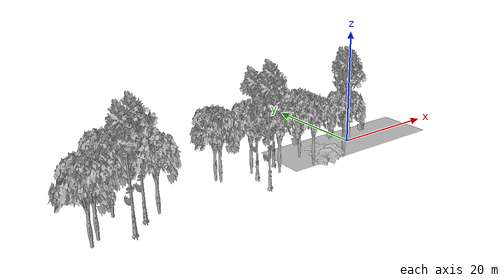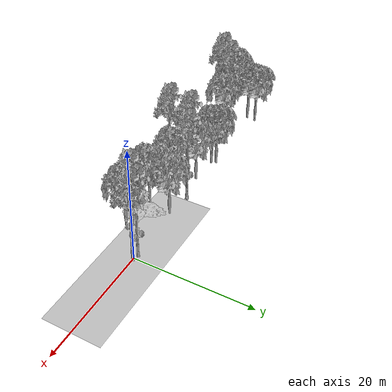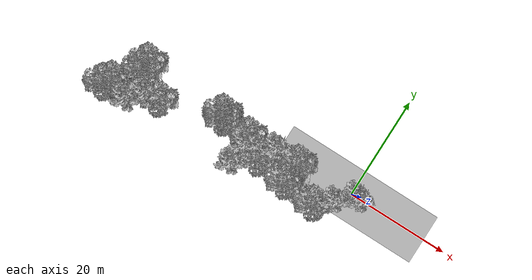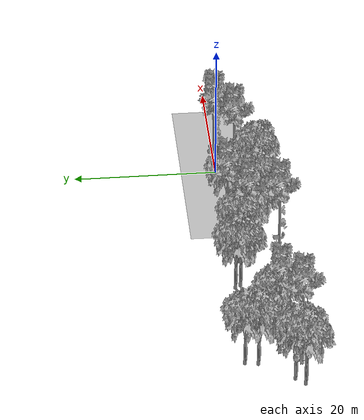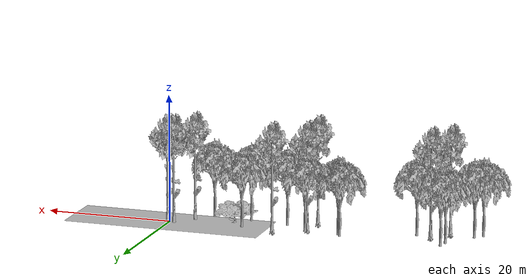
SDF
<sdf version="1.7">
 <world name="default">
  <model name="ground_plane">
   <static>1</static>
   <link name="link">
    <collision name="collision">
     <pose>-50 0 0 0 -0 0</pose>
     <geometry><plane><normal>0 0 1</normal><size>100 100</size></plane></geometry>
     <surface><contact><ode><min_depth>0.01</min_depth><max_vel>0</max_vel></ode></contact></surface>
    </collision>
    <visual name="grass">
     <cast_shadows>0</cast_shadows>
     <geometry>
      <mesh>
       <scale>0.5814285714285714 0.18142857142857144 0.1</scale>
       <uri>file://grass_plane/meshes/grass_plane.dae</uri>
      </mesh>
     </geometry>
    </visual>
   </link>
  </model>
  <model name="Tree 14">
   <static>1</static>
   <pose>-5.678869970176962 -4.981280188310555 0 1.57079 -0 0</pose>
   <link name="link">
    <collision name="collision">
     <geometry><mesh><scale>3.5 5 3.5</scale><uri>model://tree_2/meshes/tree_2.obj</uri></mesh></geometry>
    </collision>
    <visual name="visual">
     <geometry><mesh><scale>3.5 5 3.5</scale><uri>model://tree_2/meshes/tree_2.obj</uri></mesh></geometry>
    </visual>
   </link>
  </model>
  <model name="Tree 21">
   <static>1</static>
   <pose>-27.09896817922239 -0.7278361053604065 0 1.57079 -0 0</pose>
   <link name="link">
    <collision name="collision">
     <geometry><mesh><scale>3.5 5 3.5</scale><uri>model://tree_2/meshes/tree_2.obj</uri></mesh></geometry>
    </collision>
    <visual name="visual">
     <geometry><mesh><scale>3.5 5 3.5</scale><uri>model://tree_2/meshes/tree_2.obj</uri></mesh></geometry>
    </visual>
   </link>
  </model>
  <model name="Tree 39">
   <static>1</static>
   <pose>-21.96731584018657 -6.4677919267790465 0 1.57079 -0 0</pose>
   <link name="link">
    <collision name="collision">
     <geometry><mesh><scale>3.5 5 3.5</scale><uri>model://tree_9/meshes/tree_9.obj</uri></mesh></geometry>
    </collision>
    <visual name="visual">
     <geometry><mesh><scale>3.5 5 3.5</scale><uri>model://tree_9/meshes/tree_9.obj</uri></mesh></geometry>
    </visual>
   </link>
  </model>
  <model name="Tree 51">
   <static>1</static>
   <pose>-21.702652495182104 -0.9931005844212919 0 1.57079 -0 0</pose>
   <link name="link">
    <collision name="collision">
     <geometry><mesh><scale>3.5 5 3.5</scale><uri>model://tree_2/meshes/tree_2.obj</uri></mesh></geometry>
    </collision>
    <visual name="visual">
     <geometry><mesh><scale>3.5 5 3.5</scale><uri>model://tree_2/meshes/tree_2.obj</uri></mesh></geometry>
    </visual>
   </link>
  </model>
  <model name="Tree 64">
   <static>1</static>
   <pose>-27.562261313574805 -0.01884276637969684 0 1.57079 -0 0</pose>
   <link name="link">
    <collision name="collision">
     <geometry><mesh><scale>3.5 5 3.5</scale><uri>model://tree_2/meshes/tree_2.obj</uri></mesh></geometry>
    </collision>
    <visual name="visual">
     <geometry><mesh><scale>3.5 5 3.5</scale><uri>model://tree_2/meshes/tree_2.obj</uri></mesh></geometry>
    </visual>
   </link>
  </model>
  <model name="Tree 67">
   <static>1</static>
   <pose>0.3625334331338266 0.04360402097293381 0 1.57079 -0 0</pose>
   <link name="link">
    <collision name="collision">
     <geometry><mesh><scale>3.5 5 3.5</scale><uri>model://tree_9/meshes/tree_9.obj</uri></mesh></geometry>
    </collision>
    <visual name="visual">
     <geometry><mesh><scale>3.5 5 3.5</scale><uri>model://tree_9/meshes/tree_9.obj</uri></mesh></geometry>
    </visual>
   </link>
  </model>
  <model name="Tree 70">
   <static>1</static>
   <pose>-47.267833969596786 -5.637661383083788 0 1.57079 -0 0</pose>
   <link name="link">
    <collision name="collision">
     <geometry><mesh><scale>3.5 5 3.5</scale><uri>model://tree_2/meshes/tree_2.obj</uri></mesh></geometry>
    </collision>
    <visual name="visual">
     <geometry><mesh><scale>3.5 5 3.5</scale><uri>model://tree_2/meshes/tree_2.obj</uri></mesh></geometry>
    </visual>
   </link>
  </model>
  <model name="Tree 82">
   <static>1</static>
   <pose>-38.62501573279692 -4.086818588818787 0 1.57079 -0 0</pose>
   <link name="link">
    <collision name="collision">
     <geometry><mesh><scale>3.5 5 3.5</scale><uri>model://tree_2/meshes/tree_2.obj</uri></mesh></geometry>
    </collision>
    <visual name="visual">
     <geometry><mesh><scale>3.5 5 3.5</scale><uri>model://tree_2/meshes/tree_2.obj</uri></mesh></geometry>
    </visual>
   </link>
  </model>
  <model name="Tree 86">
   <static>1</static>
   <pose>-8.166008762839247 -4.852687337697436 0 1.57079 -0 0</pose>
   <link name="link">
    <collision name="collision">
     <geometry><mesh><scale>3 2 3</scale><uri>model://tree_3/meshes/tree_3.obj</uri></mesh></geometry>
    </collision>
    <visual name="visual">
     <geometry><mesh><scale>3 2 3</scale><uri>model://tree_3/meshes/tree_3.obj</uri></mesh></geometry>
    </visual>
   </link>
  </model>
  <model name="Tree 89">
   <static>1</static>
   <pose>-43.60837054232642 0.4321336020686939 0 1.57079 -0 0</pose>
   <link name="link">
    <collision name="collision">
     <geometry><mesh><scale>3.5 5 3.5</scale><uri>model://tree_2/meshes/tree_2.obj</uri></mesh></geometry>
    </collision>
    <visual name="visual">
     <geometry><mesh><scale>3.5 5 3.5</scale><uri>model://tree_2/meshes/tree_2.obj</uri></mesh></geometry>
    </visual>
   </link>
  </model>
  <model name="Tree 91">
   <static>1</static>
   <pose>-3.3028149996663814 -2.327318456436158 0 1.57079 -0 0</pose>
   <link name="link">
    <collision name="collision">
     <geometry><mesh><scale>3.5 5 3.5</scale><uri>model://tree_9/meshes/tree_9.obj</uri></mesh></geometry>
    </collision>
    <visual name="visual">
     <geometry><mesh><scale>3.5 5 3.5</scale><uri>model://tree_9/meshes/tree_9.obj</uri></mesh></geometry>
    </visual>
   </link>
  </model>
  <model name="Tree 98">
   <static>1</static>
   <pose>-43.04363036099802 -6.9533938530808825 0 1.57079 -0 0</pose>
   <link name="link">
    <collision name="collision">
     <geometry><mesh><scale>3.5 5 3.5</scale><uri>model://tree_9/meshes/tree_9.obj</uri></mesh></geometry>
    </collision>
    <visual name="visual">
     <geometry><mesh><scale>3.5 5 3.5</scale><uri>model://tree_9/meshes/tree_9.obj</uri></mesh></geometry>
    </visual>
   </link>
  </model>
  <model name="Tree 100">
   <static>1</static>
   <pose>-11.92582954641577 -4.413432477383045 0 1.57079 -0 0</pose>
   <link name="link">
    <collision name="collision">
     <geometry><mesh><scale>3.5 5 3.5</scale><uri>model://tree_2/meshes/tree_2.obj</uri></mesh></geometry>
    </collision>
    <visual name="visual">
     <geometry><mesh><scale>3.5 5 3.5</scale><uri>model://tree_2/meshes/tree_2.obj</uri></mesh></geometry>
    </visual>
   </link>
  </model>
  <model name="Tree 102">
   <static>1</static>
   <pose>-9.654848208736347 -2.7201210278821524 0 1.57079 -0 0</pose>
   <link name="link">
    <collision name="collision">
     <geometry><mesh><scale>4 2.5 4</scale><uri>model://tree_1/meshes/tree_1.obj</uri></mesh></geometry>
    </collision>
    <visual name="visual">
     <geometry><mesh><scale>4 2.5 4</scale><uri>model://tree_1/meshes/tree_1.obj</uri></mesh></geometry>
    </visual>
   </link>
  </model>
  <model name="Tree 113">
   <static>1</static>
   <pose>-21.51405669909735 -2.432933830864231 0 1.57079 -0 0</pose>
   <link name="link">
    <collision name="collision">
     <geometry><mesh><scale>3.5 5 3.5</scale><uri>model://tree_9/meshes/tree_9.obj</uri></mesh></geometry>
    </collision>
    <visual name="visual">
     <geometry><mesh><scale>3.5 5 3.5</scale><uri>model://tree_9/meshes/tree_9.obj</uri></mesh></geometry>
    </visual>
   </link>
  </model>
  <model name="Tree 114">
   <static>1</static>
   <pose>-40.614462002570626 -4.412042680127902 0 1.57079 -0 0</pose>
   <link name="link">
    <collision name="collision">
     <geometry><mesh><scale>3.5 5 3.5</scale><uri>model://tree_9/meshes/tree_9.obj</uri></mesh></geometry>
    </collision>
    <visual name="visual">
     <geometry><mesh><scale>3.5 5 3.5</scale><uri>model://tree_9/meshes/tree_9.obj</uri></mesh></geometry>
    </visual>
   </link>
  </model>
  <model name="Tree 122">
   <static>1</static>
   <pose>-16.627604589969124 -0.028349630492437328 0 1.57079 -0 0</pose>
   <link name="link">
    <collision name="collision">
     <geometry><mesh><scale>3.5 5 3.5</scale><uri>model://tree_9/meshes/tree_9.obj</uri></mesh></geometry>
    </collision>
    <visual name="visual">
     <geometry><mesh><scale>3.5 5 3.5</scale><uri>model://tree_9/meshes/tree_9.obj</uri></mesh></geometry>
    </visual>
   </link>
  </model>
  <model name="Tree 124">
   <static>1</static>
   <pose>-18.075287074851683 -3.5002341817298586 0 1.57079 -0 0</pose>
   <link name="link">
    <collision name="collision">
     <geometry><mesh><scale>3.5 5 3.5</scale><uri>model://tree_2/meshes/tree_2.obj</uri></mesh></geometry>
    </collision>
    <visual name="visual">
     <geometry><mesh><scale>3.5 5 3.5</scale><uri>model://tree_2/meshes/tree_2.obj</uri></mesh></geometry>
    </visual>
   </link>
  </model>
  <model name="Tree 127">
   <static>1</static>
   <pose>-0.7605670668108502 0.3280454647147337 0 1.57079 -0 0</pose>
   <link name="link">
    <collision name="collision">
     <geometry><mesh><scale>3.5 5 3.5</scale><uri>model://tree_9/meshes/tree_9.obj</uri></mesh></geometry>
    </collision>
    <visual name="visual">
     <geometry><mesh><scale>3.5 5 3.5</scale><uri>model://tree_9/meshes/tree_9.obj</uri></mesh></geometry>
    </visual>
   </link>
  </model>
  <model name="Tree 130">
   <static>1</static>
   <pose>-11.668973419174321 -0.472476400396566 0 1.57079 -0 0</pose>
   <link name="link">
    <collision name="collision">
     <geometry><mesh><scale>3.5 5 3.5</scale><uri>model://tree_2/meshes/tree_2.obj</uri></mesh></geometry>
    </collision>
    <visual name="visual">
     <geometry><mesh><scale>3.5 5 3.5</scale><uri>model://tree_2/meshes/tree_2.obj</uri></mesh></geometry>
    </visual>
   </link>
  </model>
  <model name="Tree 138">
   <static>1</static>
   <pose>-43.89880970439279 -1.2730829049854133 0 1.57079 -0 0</pose>
   <link name="link">
    <collision name="collision">
     <geometry><mesh><scale>3.5 5 3.5</scale><uri>model://tree_2/meshes/tree_2.obj</uri></mesh></geometry>
    </collision>
    <visual name="visual">
     <geometry><mesh><scale>3.5 5 3.5</scale><uri>model://tree_2/meshes/tree_2.obj</uri></mesh></geometry>
    </visual>
   </link>
  </model>
  <model name="Tree 148">
   <static>1</static>
   <pose>-48.39138633499161 -6.82329041529105 0 1.57079 -0 0</pose>
   <link name="link">
    <collision name="collision">
     <geometry><mesh><scale>3.5 5 3.5</scale><uri>model://tree_2/meshes/tree_2.obj</uri></mesh></geometry>
    </collision>
    <visual name="visual">
     <geometry><mesh><scale>3.5 5 3.5</scale><uri>model://tree_2/meshes/tree_2.obj</uri></mesh></geometry>
    </visual>
   </link>
  </model>
  <model name="Tree 151">
   <static>1</static>
   <pose>-9.969773635944549 -5.718886389251971 0 1.57079 -0 0</pose>
   <link name="link">
    <collision name="collision">
     <geometry><mesh><scale>3 2 3</scale><uri>model://tree_3/meshes/tree_3.obj</uri></mesh></geometry>
    </collision>
    <visual name="visual">
     <geometry><mesh><scale>3 2 3</scale><uri>model://tree_3/meshes/tree_3.obj</uri></mesh></geometry>
    </visual>
   </link>
  </model>
 </world>
</sdf>
